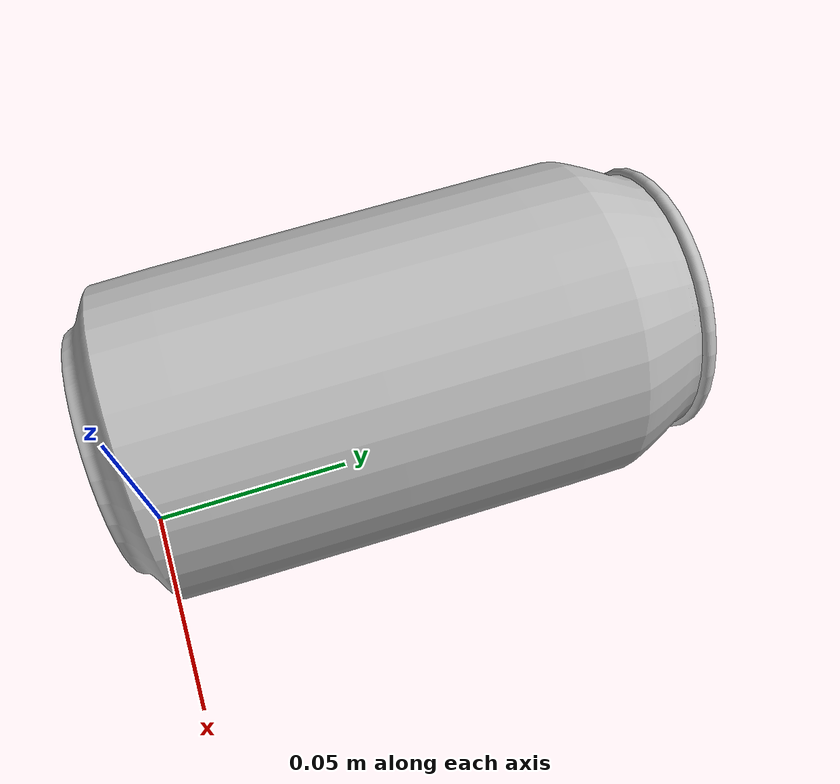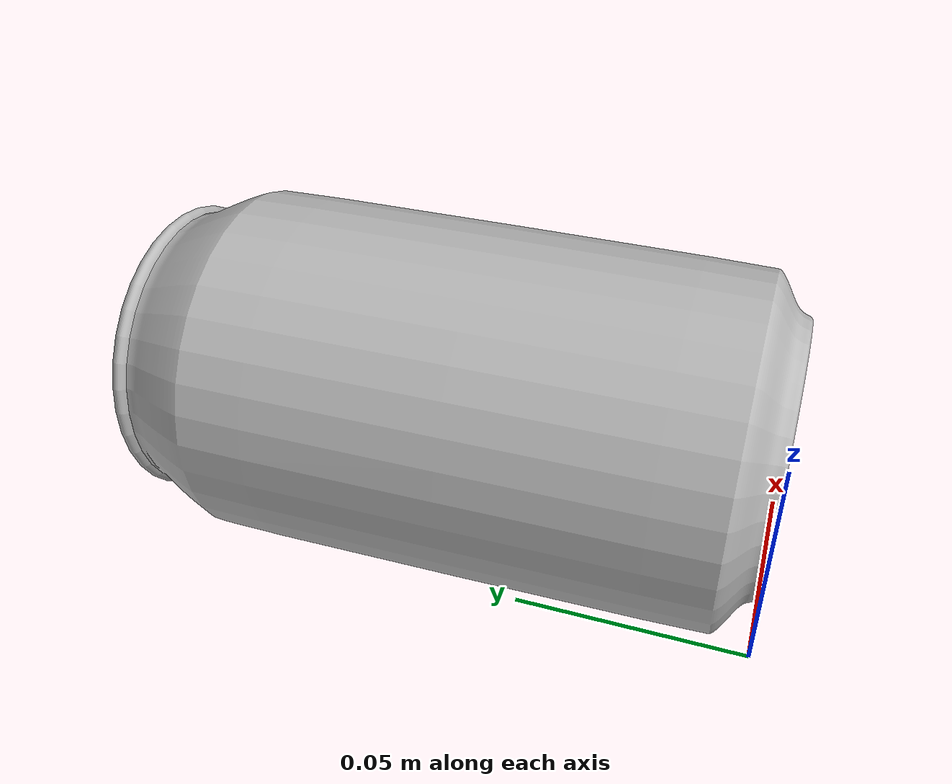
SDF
<?xml version="1.0" ?>
<sdf version="1.4">
  <model name="pepsi_can">
    <pose>0 0 0.0505 0 0 0</pose>
    <static>false</static>
    <link name="body">
      <inertial>
        <pose>0.002203 0.071741 0.000318 0 0 0</pose>
        <mass>1</mass>
        <inertia>
          <ixx>0.027718e-3</ixx>
          <ixy>0.001015e-3</ixy>
          <ixz>-0.000001e-3</ixz>
          <iyy>0.021786e-3</iyy>
          <iyz>0.000429e-3</iyz>
          <izz>0.027719e-3</izz>
        </inertia>
      </inertial>
      <visual name="visual">
        <cast_shadows>true</cast_shadows>
        <geometry>
         <mesh>
           <uri>package://costar_objects/sdf/pepsi_can/meshes/Pepsi_Can.obj</uri>
         </mesh>
        </geometry>
      </visual>
      <collision name="collision">
        <surface>
          <friction>
            <ode>
              <mu>0.3</mu>
              <mu2>0.3</mu2>
            </ode>
          </friction>
        </surface>
        <geometry>
         <mesh>
           <uri>package://costar_objects/sdf/pepsi_can/meshes/Pepsi_Can.stl</uri>
         </mesh>
        </geometry>
      </collision>
    </link>
  </model>
</sdf>
